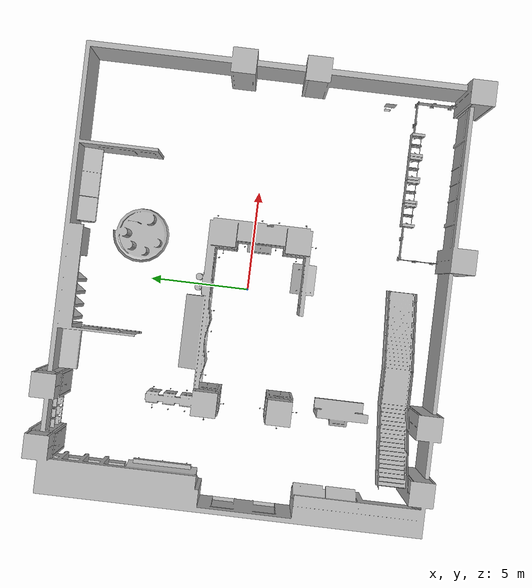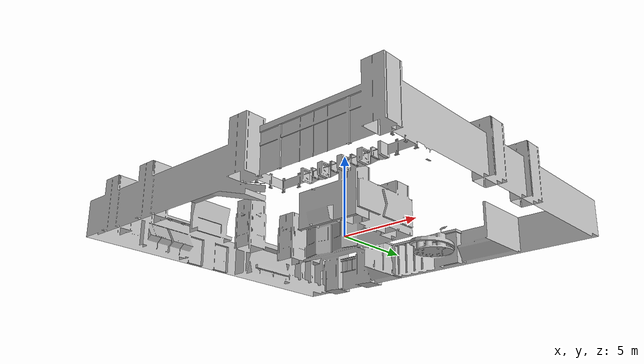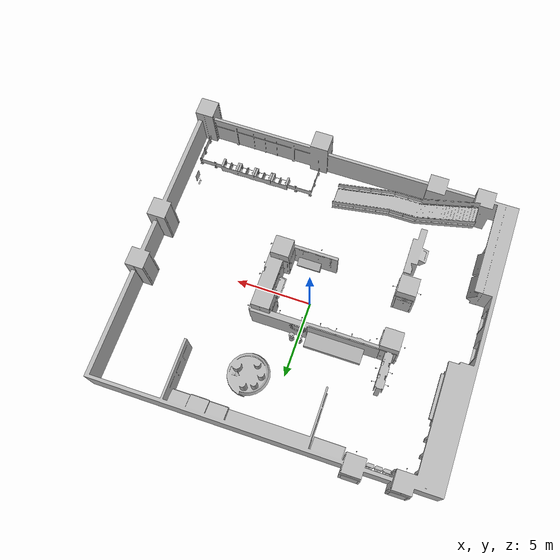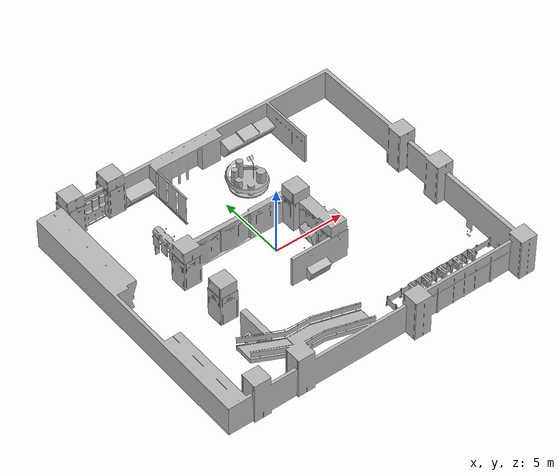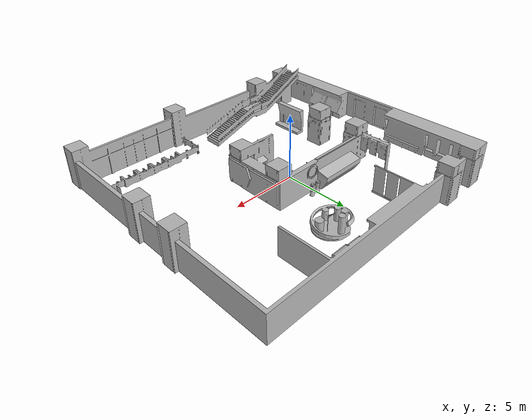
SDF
<?xml version="1.0" ?>
<sdf version="1.4">
  <model name="ISCAS_Museum">
    <link name="link">
      <inertial>
        <mass>15</mass>
        <inertia>
          <ixx>0.0</ixx>
          <ixy>0.0</ixy>
          <ixz>0.0</ixz>
          <iyy>0.0</iyy>
          <iyz>0.0</iyz>
          <izz>0.0</izz>
        </inertia>
      </inertial>
      <collision name="collision">
        <pose>0 0 0 0 0 0</pose>
        <geometry>
          <mesh>
            <uri>model://ISCAS/ISCAS_Museum/meshes/ISCASmuseum.obj</uri>
          </mesh>
        </geometry>
      </collision>
      <visual name="visual">
        <pose>0 0 0 0 0 0</pose>
        <geometry>
          <mesh>
            <uri>model://ISCAS/ISCAS_Museum/meshes/ISCASmuseum.obj</uri>
          </mesh>
        </geometry>
      </visual>
    </link>
    <static>1</static>
  </model>
</sdf>
